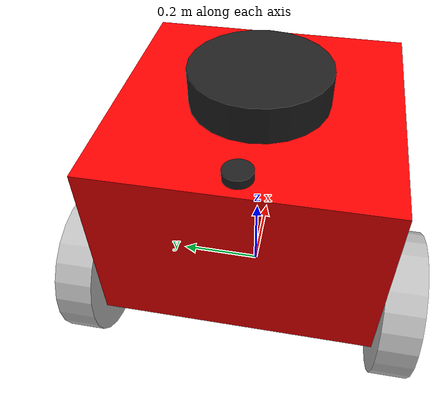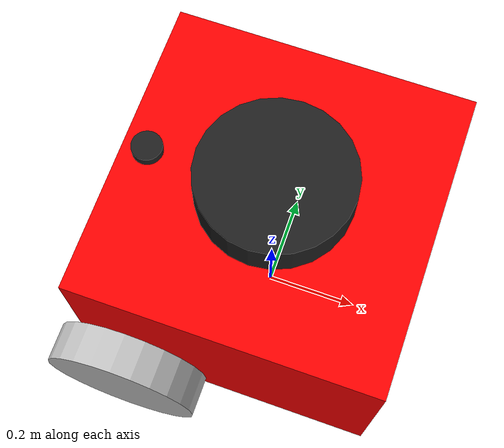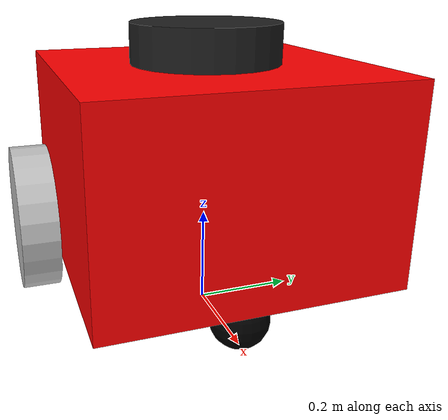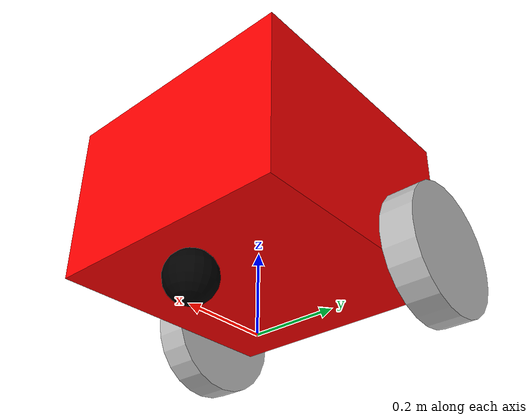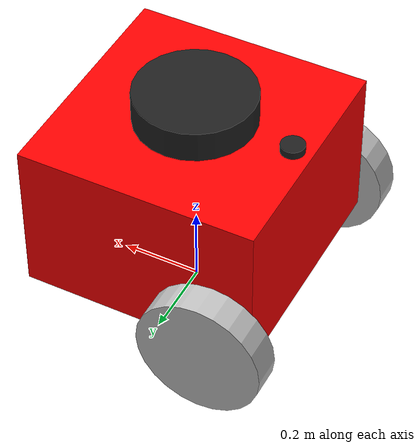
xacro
<?xml version="1.0"?>
<robot name="mbot" xmlns:xacro="http://www.ros.org/wiki/xacro">

    <xacro:include filename="$(find lidar_robot)/urdf/two_wheel_base.xacro" />
    <xacro:include filename="$(find lidar_robot)/urdf/sensors/lidar_gazebo.xacro" />
    <xacro:include filename="$(find lidar_robot)/urdf/sensors/imu_gazebo.xacro" />

    <xacro:property name="lidar_offset_x" value="0" />
    <xacro:property name="lidar_offset_y" value="0" />
    <xacro:property name="lidar_offset_z" value="0.24" />

    <xacro:property name="imu_offset_x" value="-0.25" />
    <xacro:property name="imu_offset_y" value="0" />
    <xacro:property name="imu_offset_z" value="0.21" />

    <!-- lidar -->
    <joint name="lidar_joint" type="fixed">
        <origin xyz="${lidar_offset_x} ${lidar_offset_y} ${lidar_offset_z}" rpy="0 0 0" />
        <parent link="base_link"/>
        <child link="lidar_link"/>
    </joint>

    <!-- imu -->
    <joint name="imu_joint" type="fixed">
        <origin xyz="${imu_offset_x} ${imu_offset_y} ${imu_offset_z}" rpy="0 0 0" />
        <parent link="base_link"/>
        <child link="imu_link"/>
    </joint>

    <xacro:mylidar/>

    <xacro:myimu/>

    <xacro:two_wheel_base/>

</robot>

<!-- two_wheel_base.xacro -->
<robot name="two_wheeled_robot_base" xmlns:xacro="http://ros.org/wiki/xacro">

	<!--机器人宏定义 -->
	<xacro:property name="M_PI" value="3.1415926"/>
	<!-- 机器人主体长宽高（米） -->
  	<xacro:property name="base_width" value="0.60"/>
  	<xacro:property name="base_length" value="0.60"/>
  	<xacro:property name="base_height" value="0.40"/>

  	<!-- 机器人双后轮大小 -->
 	<xacro:property name="wheel_radius" value="0.16"/>
  	<xacro:property name="wheel_width" value="0.08"/>

  	<!--机器人前轮半径-->
  	<xacro:property name="caster_radius"  value="0.06"/> <!-- 直径 = wheel_radius - ( base_height/2 - wheel_zoff) -->

  	<!-- X轴为前进方向，Y轴为前进方向左边，Z轴为竖直向上方向 -->
  	<!-- 定义轮子在各轴上的偏移 -->
  	<xacro:property name="wheel_ygap" value="0.34"/>
  	<xacro:property name="wheel_zoff" value="0.16"/>
  	<xacro:property name="wheel_xoff" value="0.20"/>
  	<xacro:property name="caster_xoff" value="0.18"/>

    <!-- 定义颜色配置 -->
    <material name="yellow">
        <color rgba="1 0.4 0 1"/>
    </material>
    <material name="black">
        <color rgba="0 0 0 0.95"/>
    </material>
    <material name="gray">
        <color rgba="0.75 0.75 0.75 1"/>
    </material>
    <material name="red">
        <color rgba="1.0 0.0 0.0 1.0"/>
    </material>

  	<!-- 定义惯性矩阵函数  -->
  	<xacro:macro name="box_inertia" params="m w h d">
    	<inertial>
      		<mass value="${m}"/>
      		<inertia ixx="${(m/12) * (h*h + d*d)}" ixy="0.0" ixz="0.0" iyy="${(m/12) * (w*w + d*d)}" iyz="0.0" izz="${(m/12) * (w*w + h*h)}"/>
    	</inertial>
  	</xacro:macro>

  	<xacro:macro name="cylinder_inertia" params="m r h">
    	<inertial>
      		<mass value="${m}"/>
      		<inertia ixx="${(m/12) * (3*r*r + h*h)}" ixy = "0" ixz = "0" iyy="${(m/12) * (3*r*r + h*h)}" iyz = "0" izz="${(m/2) * (r*r)}"/>
    	</inertial>
  	</xacro:macro>

  	<xacro:macro name="sphere_inertia" params="m r">
    	<inertial>
      		<mass value="${m}"/>
      		<inertia ixx="${(2/5) * m * (r*r)}" ixy="0.0" ixz="0.0" iyy="${(2/5) * m * (r*r)}" iyz="0.0" izz="${(2/5) * m * (r*r)}"/>
    	</inertial>
  	</xacro:macro>

	    <!-- 定义轮子配置函数 -->
    <xacro:macro name="wheel" params="prefix reflect">
        <joint name="${prefix}_wheel_joint" type="continuous">
            <origin xyz="${-wheel_xoff} ${reflect*wheel_ygap} ${-wheel_zoff}" rpy="0 0 0"/>
            <parent link="base_link"/>
            <child link="${prefix}_wheel_link"/>
            <axis xyz="0 1 0"/>
        </joint>

        <link name="${prefix}_wheel_link">
            <visual>
                <origin xyz="0 0 0" rpy="${M_PI/2} 0 0" />
                <geometry>
                    <cylinder radius="${wheel_radius}" length = "${wheel_width}"/>
                </geometry>
                <material name="gray" />
            </visual>
            <collision>
                <origin xyz="0 0 0" rpy="${M_PI/2} 0 0" />
                <geometry>
                    <cylinder radius="${wheel_radius}" length = "${wheel_width}"/>
                </geometry>
            </collision>
            <xacro:cylinder_inertia  m="5.0" r="${wheel_radius}" h="${wheel_width}" />
        </link>

        <gazebo reference="${prefix}_wheel_link">
            <material>Gazebo/Gray</material>
            <mu1>1.0</mu1>
            <mu2>1.0</mu2>
        </gazebo>

        <!-- Transmission is important to link the joints and the controller -->
        <transmission name="${prefix}_wheel_joint_trans">
            <type>transmission_interface/SimpleTransmission</type>
            <joint name="${prefix}_wheel_joint" >
                <hardwareInterface>hardware_interface/VelocityJointInterface</hardwareInterface>
            </joint>
            <actuator name="${prefix}_wheel_joint_motor">
                <hardwareInterface>hardware_interface/VelocityJointInterface</hardwareInterface>
                <mechanicalReduction>1</mechanicalReduction>
            </actuator>
        </transmission>
    </xacro:macro>

    <!-- 定义前支撑轮配置函数 -->
    <xacro:macro name="caster" params="reflect">
        <joint name="caster_joint" type="fixed">
            <origin xyz="${reflect*wheel_xoff} 0 ${-(base_height/2 + caster_radius)}" rpy="0 0 0"/>
            <parent link="base_link"/>
            <child link="caster_link"/>
        </joint>

        <link name="caster_link">
            <visual>
                <origin xyz="0 0 0" rpy="0 0 0"/>
                <geometry>
                    <sphere radius="${caster_radius}" />
                </geometry>
                <material name="black" />
            </visual>
            <collision>
                <origin xyz="0 0 0" rpy="0 0 0"/>
                <geometry>
                    <sphere radius="${caster_radius}" />
                </geometry>
            </collision>
            <xacro:sphere_inertia  m="3.0" r="${caster_radius}" />
        </link>

        <gazebo reference="caster_link">
            <material>Gazebo/Black</material>
			<mu1>0.02</mu1>
            <mu2>0.02</mu2>
        </gazebo>
    </xacro:macro>

  	<!--机器人主体配置-->
    <xacro:macro name="two_wheel_base">
  	<link name="base_link">
  		<visual>
            <origin xyz=" 0 0 0" rpy="0 0 0" />
            <geometry>
                <box size="${base_length} ${base_width} ${base_height}"/>
            </geometry>
            <material name="red" />
        </visual>

        <collision>
            <origin xyz=" 0 0 0" rpy="0 0 0" />
            <geometry>
               <box size="${base_length} ${base_width} ${base_height}"/>
            </geometry>
        </collision>

        <xacro:box_inertia  m="20.0" w="${base_width}" d="${base_length}" h="${base_height}"/>
    </link>

    <gazebo reference="base_link">
    	<material>Gazebo/red</material>
    </gazebo>

  	<!--机器人Base Footprint 也就是机器人中心在地面的投影，便于里程计的计算等操作-->
  	<link name="base_footprint">
  	    <visual>
                <origin xyz="0 0 0" rpy="0 0 0" />
                <geometry>
                    <box size="0.001 0.001 0.001" />
                </geometry>
            </visual>
	</link>

	<joint name="base_joint" type="fixed">
    	<parent link="base_footprint"/>
    	<child link="base_link"/>
    	<origin xyz="0.0 0.0 ${wheel_radius+wheel_zoff}" rpy="0 0 0"/>
  	</joint>

	<gazebo reference="base_footprint">
            <turnGravityOff>false</turnGravityOff>
        </gazebo>

	<!--调用轮子函数进行快速配置-->
	<xacro:wheel prefix="left" reflect="1"/>
	<xacro:wheel prefix="right" reflect="-1"/>
  	<xacro:caster reflect="1"/>

  	<!--轮子控制配置-->
  	<gazebo>
        <plugin name="differential_drive_controller"
            filename="libgazebo_ros_diff_drive.so">
            <update_rate>20</update_rate>
            <left_joint>left_wheel_joint</left_joint>
            <right_joint>right_wheel_joint</right_joint>
            <wheel_separation>${wheel_ygap*2}</wheel_separation>
            <wheel_diameter>${2*wheel_radius}</wheel_diameter>
            <max_wheel_torque>20</max_wheel_torque>
            <max_wheel_acceleration>1.0</max_wheel_acceleration>
            <command_topic>cmd_vel</command_topic>
            <publish_odom>true</publish_odom>
            <publish_odom_tf>true</publish_odom_tf>
            <publish_wheel_tf>true</publish_wheel_tf>
            <odometry_topic>odom</odometry_topic>
            <odometry_frame>odom</odometry_frame>
            <robot_base_frame>base_footprint</robot_base_frame>
            <odometry_source>1</odometry_source>
        </plugin>
    </gazebo>
    </xacro:macro>

</robot>

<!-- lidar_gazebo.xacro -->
<robot xmlns:xacro="http://www.ros.org/wiki/xacro" name="lidar">

    <xacro:macro name="mylidar">
        <!--雷达配置-->
	<link name="lidar_link">
		<visual>
			<origin xyz="0 0 0" rpy="0 0 0"/>
			<geometry>
				<cylinder radius="0.15" length="0.08"/>
			</geometry>
		</visual>

		<collision>
			<origin xyz="0 0 0" rpy="0 0 0"/>
      		<geometry>
         		<cylinder radius="0.15" length="0.08"/>
      		</geometry>
    	</collision>

		<xacro:cylinder_inertia m="8" r="0.15" h="0.08"/>
	</link>

        <gazebo reference="lidar_link">
    	<sensor type="ray" name="lidar" >
      		<update_rate>20</update_rate>
      	<ray>
        	<scan>
          		<horizontal>
            		<samples>360</samples>
            		<resolution>1.000000</resolution>
            		<min_angle>-3</min_angle>
            		<max_angle>3</max_angle>
          		</horizontal>
        	</scan>
        	<range>
          		<min>0.30</min>
          		<max>30.0</max>
          		<resolution>0.01</resolution>
        	</range>
        	<noise>
          		<type>gaussian</type>
          		<mean>0.0</mean>
          		<stddev>0.01</stddev>
        	</noise>
      	</ray>
      	<plugin name="scan" filename="libgazebo_ros_ray_sensor.so">
        	<ros>
				<namespace>/</namespace>
          		<remapping>~/out:=scan</remapping>
        	</ros>
        	<output_type>sensor_msgs/LaserScan</output_type>
			<frame_name>lidar_link</frame_name>
      	</plugin>
    	</sensor>
  	</gazebo>
  	<gazebo reference="lidar_link">
    	<material>Gazebo/Black</material>
  	</gazebo>

    </xacro:macro>
</robot>

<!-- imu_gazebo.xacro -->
<robot xmlns:xacro="http://www.ros.org/wiki/xacro" name="imu">

    <xacro:macro name="myimu">
        <!--IMU配置-->
	<link name="imu_link">
		<visual>
			<origin xyz="0 0 0" rpy="0 0 0"/>
			<geometry>
				<cylinder radius="0.03" length="0.02"/>
			</geometry>
		</visual>

		<collision>
			<origin xyz="0 0 0" rpy="0 0 0"/>
      		<geometry>
         		<cylinder radius="0.03" length="0.02"/>
      		</geometry>
    	</collision>

		<xacro:cylinder_inertia m="2" r="0.03" h="0.02"/>
	</link>

    <gazebo reference="imu_link">
        <sensor name="imu_sensor" type="imu">
        <plugin filename="libgazebo_ros_imu_sensor.so" name="imu_plugin">
          <ros>
            <namespace>/</namespace>
            <remapping>~/out:=imu</remapping>
          </ros>
          <initial_orientation_as_reference>false</initial_orientation_as_reference>
        </plugin>
        <always_on>true</always_on>
        <update_rate>100</update_rate>
        <visualize>true</visualize>
        <imu>
          <angular_velocity>
            <x>
              <noise type="gaussian">
                <mean>0.0</mean>
                <stddev>2e-4</stddev>
                <bias_mean>0.0000075</bias_mean>
                <bias_stddev>0.0000008</bias_stddev>
              </noise>
            </x>
            <y>
              <noise type="gaussian">
                <mean>0.0</mean>
                <stddev>2e-4</stddev>
                <bias_mean>0.0000075</bias_mean>
                <bias_stddev>0.0000008</bias_stddev>
              </noise>
            </y>
            <z>
              <noise type="gaussian">
                <mean>0.0</mean>
                <stddev>2e-4</stddev>
                <bias_mean>0.0000075</bias_mean>
                <bias_stddev>0.0000008</bias_stddev>
              </noise>
            </z>
          </angular_velocity>
          <linear_acceleration>
            <x>
              <noise type="gaussian">
                <mean>0.0</mean>
                <stddev>1.7e-2</stddev>
                <bias_mean>0.1</bias_mean>
                <bias_stddev>0.001</bias_stddev>
              </noise>
            </x>
            <y>
              <noise type="gaussian">
                <mean>0.0</mean>
                <stddev>1.7e-2</stddev>
                <bias_mean>0.1</bias_mean>
                <bias_stddev>0.001</bias_stddev>
              </noise>
            </y>
            <z>
              <noise type="gaussian">
                <mean>0.0</mean>
                <stddev>1.7e-2</stddev>
                <bias_mean>0.1</bias_mean>
                <bias_stddev>0.001</bias_stddev>
              </noise>
            </z>
          </linear_acceleration>
        </imu>
      </sensor>
    </gazebo>
  	<gazebo reference="imu_link">
    	<material>Gazebo/Black</material>
  	</gazebo>

    </xacro:macro>
</robot>
